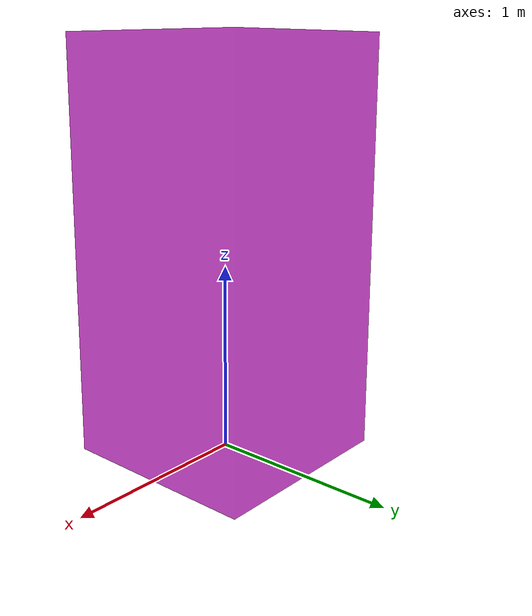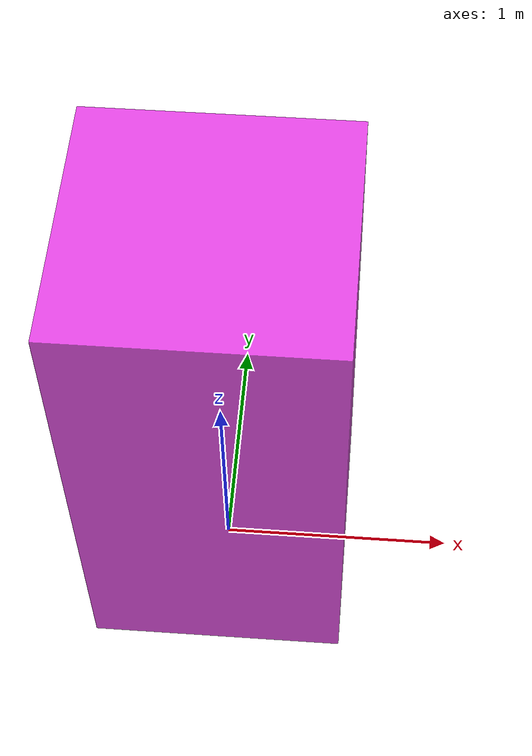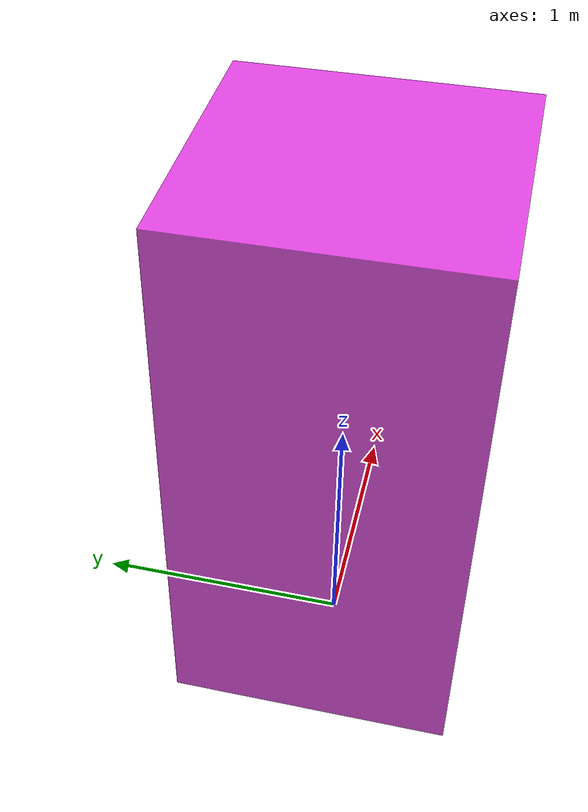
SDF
<?xml version="1.0"?>
<sdf version="1.7">
  <model name="bbox_box4">
    <static>true</static>
    <link name="bbox_box4_link">
      <pose>0 0 1.09 0 0 0</pose>
      <collision name="bbox_box4_collision">
        <geometry>
          <box>
            <size>1.08 1.08 2.18</size>
          </box>
        </geometry>
      </collision>
      <visual name="bbox_box4_visual">
        <geometry>
          <box>
            <size>1.08 1.08 2.18</size>
          </box>
        </geometry>
        <material>
          <ambient>0.88 0.18 0.88 0.85</ambient>
          <diffuse>0.88 0.18 0.88 0.85</diffuse>
          <specular>0.10 0.10 0.10 1.0</specular>
        </material>
        <transparency>0.15</transparency>
      </visual>
    </link>
  </model>
</sdf>
